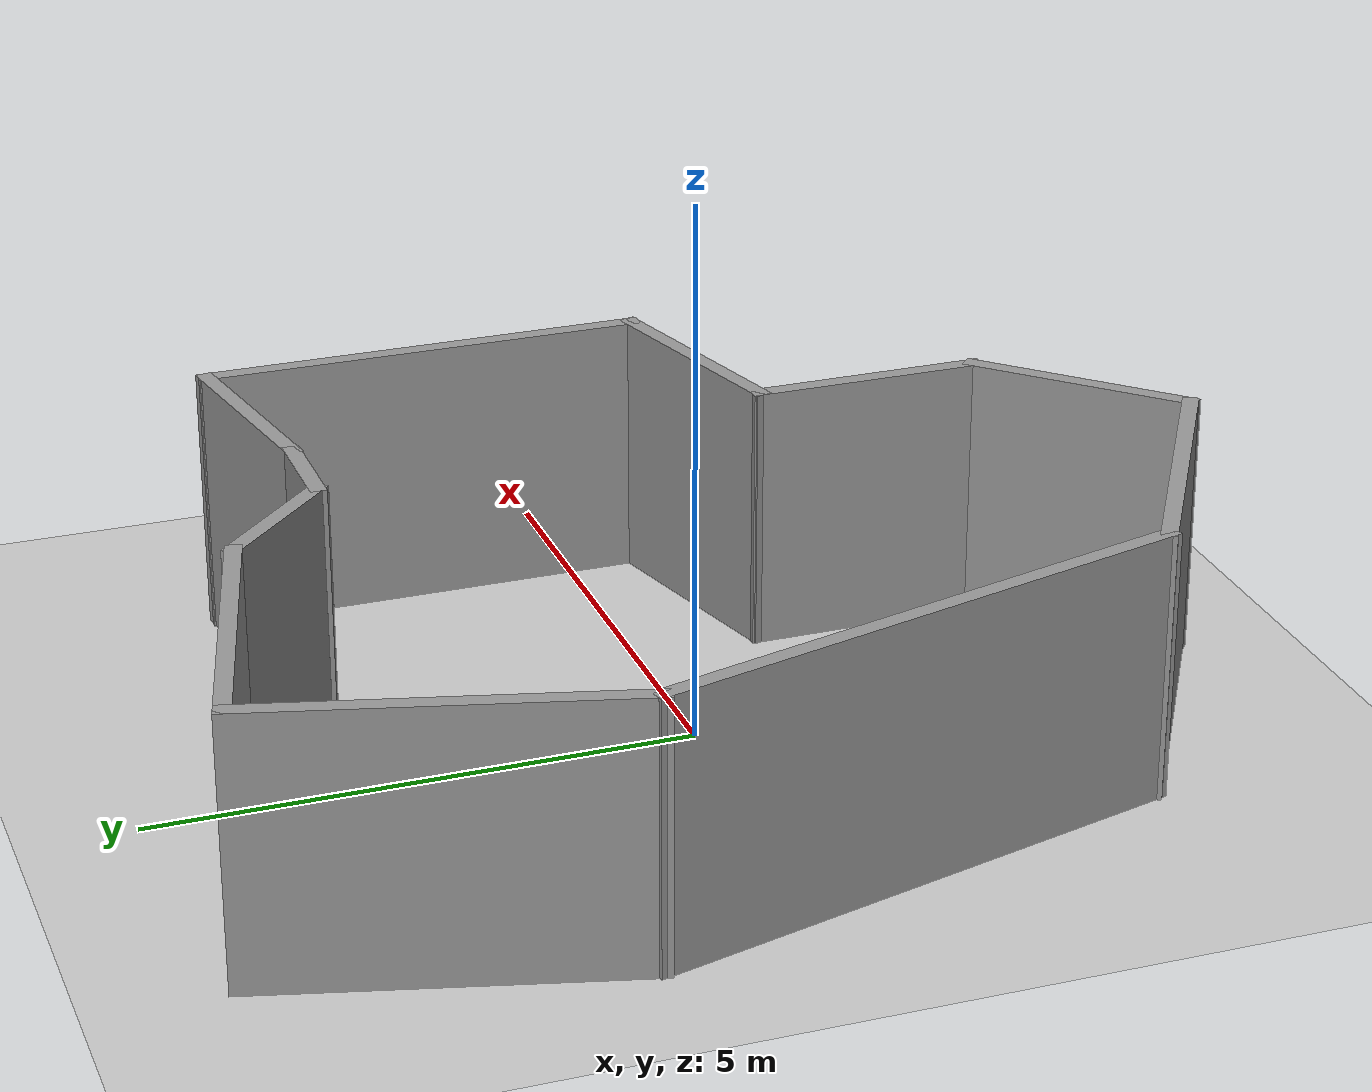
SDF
<sdf version="1.5">
 <world name="default">
  <include><uri>model://sun</uri></include>
  <include><uri>model://ground_plane</uri></include>
  <model name="Untitled">
   <pose>0 0 0 0 0 -1.57</pose>
   <link name="Wall_0">
    <collision name="Wall_0_Collision">
     <geometry><box><size>1 0.15 2.5</size></box></geometry>
     <pose>0 0 1.25 0 -0 0</pose>
    </collision>
    <visual name="Wall_0_Visual">
     <pose>0 0 1.25 0 -0 0</pose>
     <geometry><box><size>1 0.15 2.5</size></box></geometry>
     <material>
      <script><uri>file://media/materials/scripts/gazebo.material</uri><name>Gazebo/Grey</name></script>
      <ambient>1 1 1 1</ambient>
     </material>
     <meta><layer>0</layer></meta>
    </visual>
    <pose>-3.10841 1.34877 0 0 -0 -1.5708</pose>
   </link>
   <link name="Wall_1">
    <collision name="Wall_1_Collision">
     <geometry><box><size>1.5 0.15 2.5</size></box></geometry>
     <pose>0 0 1.25 0 -0 0</pose>
    </collision>
    <visual name="Wall_1_Visual">
     <pose>0 0 1.25 0 -0 0</pose>
     <geometry><box><size>1.5 0.15 2.5</size></box></geometry>
     <material>
      <script><uri>file://media/materials/scripts/gazebo.material</uri><name>Gazebo/Grey</name></script>
      <ambient>1 1 1 1</ambient>
     </material>
     <meta><layer>0</layer></meta>
    </visual>
    <pose>-3.58571 0.44647 0 0 -0 -2.35619</pose>
   </link>
   <link name="Wall_10">
    <collision name="Wall_10_Collision">
     <geometry><box><size>2.05641 0.15 2.5</size></box></geometry>
     <pose>0 0 1.25 0 -0 0</pose>
    </collision>
    <visual name="Wall_10_Visual">
     <pose>0 0 1.25 0 -0 0</pose>
     <geometry><box><size>2.05641 0.15 2.5</size></box></geometry>
     <material>
      <script><uri>file://media/materials/scripts/gazebo.material</uri><name>Gazebo/Grey</name></script>
      <ambient>1 1 1 1</ambient>
     </material>
     <meta><layer>0</layer></meta>
    </visual>
    <pose>-3.27521 2.71226 0 0 -0 -1.3949</pose>
   </link>
   <link name="Wall_2">
    <collision name="Wall_2_Collision">
     <geometry><box><size>3 0.15 2.5</size></box></geometry>
     <pose>0 0 1.25 0 -0 0</pose>
    </collision>
    <visual name="Wall_2_Visual">
     <pose>0 0 1.25 0 -0 0</pose>
     <geometry><box><size>3 0.15 2.5</size></box></geometry>
     <material>
      <script><uri>file://media/materials/scripts/gazebo.material</uri><name>Gazebo/Grey</name></script>
      <ambient>1 1 1 1</ambient>
     </material>
     <meta><layer>0</layer></meta>
    </visual>
    <pose>-4.43182 -1.40727 0 0 -0 -1.8326</pose>
   </link>
   <link name="Wall_3">
    <collision name="Wall_3_Collision">
     <geometry><box><size>3.5 0.15 2.5</size></box></geometry>
     <pose>0 0 1.25 0 -0 0</pose>
    </collision>
    <visual name="Wall_3_Visual">
     <pose>0 0 1.25 0 -0 0</pose>
     <geometry><box><size>3.5 0.15 2.5</size></box></geometry>
     <material>
      <script><uri>file://media/materials/scripts/gazebo.material</uri><name>Gazebo/Grey</name></script>
      <ambient>1 1 1 1</ambient>
     </material>
     <meta><layer>0</layer></meta>
    </visual>
    <pose>-3.18272 -3.21724 0 0 -0 -0.261799</pose>
   </link>
   <link name="Wall_4">
    <collision name="Wall_4_Collision">
     <geometry><box><size>5.25 0.15 2.5</size></box></geometry>
     <pose>0 0 1.25 0 -0 0</pose>
    </collision>
    <visual name="Wall_4_Visual">
     <pose>0 0 1.25 0 -0 0</pose>
     <geometry><box><size>5.25 0.15 2.5</size></box></geometry>
     <material>
      <script><uri>file://media/materials/scripts/gazebo.material</uri><name>Gazebo/Grey</name></script>
      <ambient>1 1 1 1</ambient>
     </material>
     <meta><layer>0</layer></meta>
    </visual>
    <pose>0.898321 -2.99077 0 0 -0 0.261799</pose>
   </link>
   <link name="Wall_5">
    <collision name="Wall_5_Collision">
     <geometry><box><size>3 0.15 2.5</size></box></geometry>
     <pose>0 0 1.25 0 -0 0</pose>
    </collision>
    <visual name="Wall_5_Visual">
     <pose>0 0 1.25 0 -0 0</pose>
     <geometry><box><size>3 0.15 2.5</size></box></geometry>
     <material>
      <script><uri>file://media/materials/scripts/gazebo.material</uri><name>Gazebo/Grey</name></script>
      <ambient>1 1 1 1</ambient>
     </material>
     <meta><layer>0</layer></meta>
    </visual>
    <pose>4.07393 -1.0967 0 0 -0 1.0472</pose>
   </link>
   <link name="Wall_6">
    <collision name="Wall_6_Collision">
     <geometry><box><size>2.25 0.15 2.5</size></box></geometry>
     <pose>0 0 1.25 0 -0 0</pose>
    </collision>
    <visual name="Wall_6_Visual">
     <pose>0 0 1.25 0 -0 0</pose>
     <geometry><box><size>2.25 0.15 2.5</size></box></geometry>
     <material>
      <script><uri>file://media/materials/scripts/gazebo.material</uri><name>Gazebo/Grey</name></script>
      <ambient>1 1 1 1</ambient>
     </material>
     <meta><layer>0</layer></meta>
    </visual>
    <pose>4.04397 0.879853 0 0 -0 2.35619</pose>
   </link>
   <link name="Wall_7">
    <collision name="Wall_7_Collision">
     <geometry><box><size>2.25 0.15 2.5</size></box></geometry>
     <pose>0 0 1.25 0 -0 0</pose>
    </collision>
    <visual name="Wall_7_Visual">
     <pose>0 0 1.25 0 -0 0</pose>
     <geometry><box><size>2.25 0.15 2.5</size></box></geometry>
     <material>
      <script><uri>file://media/materials/scripts/gazebo.material</uri><name>Gazebo/Grey</name></script>
      <ambient>1 1 1 1</ambient>
     </material>
     <meta><layer>0</layer></meta>
    </visual>
    <pose>2.25151 1.62231 0 0 -0 3.14159</pose>
   </link>
   <link name="Wall_8">
    <collision name="Wall_8_Collision">
     <geometry><box><size>2.25 0.15 2.5</size></box></geometry>
     <pose>0 0 1.25 0 -0 0</pose>
    </collision>
    <visual name="Wall_8_Visual">
     <pose>0 0 1.25 0 -0 0</pose>
     <geometry><box><size>2.25 0.15 2.5</size></box></geometry>
     <material>
      <script><uri>file://media/materials/scripts/gazebo.material</uri><name>Gazebo/Grey</name></script>
      <ambient>1 1 1 1</ambient>
     </material>
     <meta><layer>0</layer></meta>
    </visual>
    <pose>0.929748 2.63654 0 0 -0 1.8326</pose>
   </link>
   <link name="Wall_9">
    <collision name="Wall_9_Collision">
     <geometry><box><size>4.25 0.15 2.5</size></box></geometry>
     <pose>0 0 1.25 0 -0 0</pose>
    </collision>
    <visual name="Wall_9_Visual">
     <pose>0 0 1.25 0 -0 0</pose>
     <geometry><box><size>4.25 0.15 2.5</size></box></geometry>
     <material>
      <script><uri>file://media/materials/scripts/gazebo.material</uri><name>Gazebo/Grey</name></script>
      <ambient>1 1 1 1</ambient>
     </material>
     <meta><layer>0</layer></meta>
    </visual>
    <pose>-1.39201 3.65076 0 0 -0 3.14159</pose>
   </link>
   <static>1</static>
  </model>
  <physics type="ode">
   <max_step_size>0.01</max_step_size>
   <real_time_factor>1</real_time_factor>
   <real_time_update_rate>100</real_time_update_rate>
   <gravity>0 0 -9.8</gravity>
  </physics>
 </world>
</sdf>
